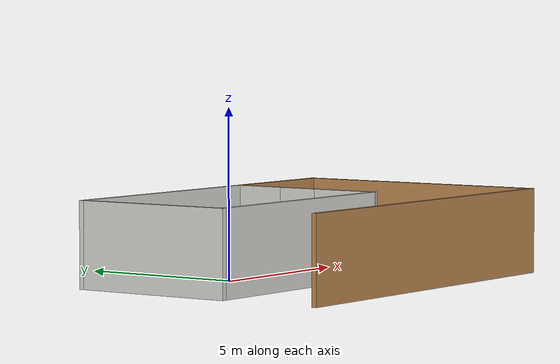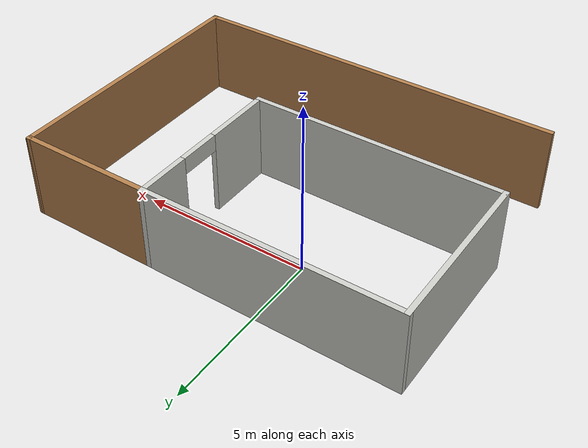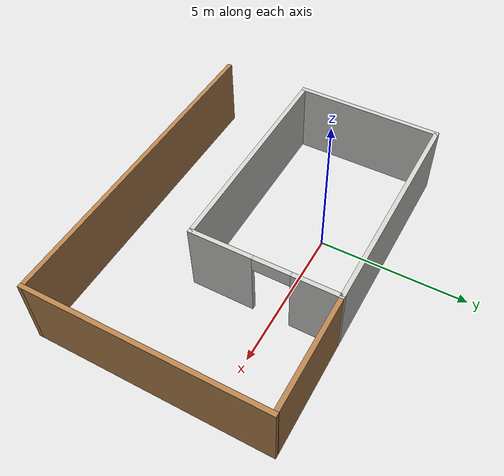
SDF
<?xml version='1.0'?>
<sdf version='1.6'>
  <model name='hospital_demo'>
    <pose frame=''>1.55053 -1.86018 0 0 -0 0</pose>
    <link name='Wall_0'>
      <collision name='Wall_0_Collision'>
        <geometry>
          <box>
            <size>5 0.15 2.5</size>
          </box>
        </geometry>
        <pose frame=''>0 0 1.25 0 -0 0</pose>
      </collision>
      <visual name='Wall_0_Visual'>
        <pose frame=''>0 0 1.25 0 -0 0</pose>
        <geometry>
          <box>
            <size>5 0.15 2.5</size>
          </box>
        </geometry>
        <material>
          <script>
            <uri>file://media/materials/scripts/gazebo.material</uri>
            <name>Gazebo/CeilingTiled</name>
          </script>
          <ambient>1 1 1 1</ambient>
        </material>
        <meta>
          <layer>0</layer>
        </meta>
      </visual>
      <pose frame=''>-5.6 1.5 0 0 -0 -1.5708</pose>
    </link>
    <link name='Wall_10'>
      <collision name='Wall_10_Collision'>
        <geometry>
          <box>
            <size>11.25 0.15 2.5</size>
          </box>
        </geometry>
        <pose frame=''>0 0 1.25 0 -0 0</pose>
      </collision>
      <visual name='Wall_10_Visual'>
        <pose frame=''>0 0 1.25 0 -0 0</pose>
        <geometry>
          <box>
            <size>11.25 0.15 2.5</size>
          </box>
        </geometry>
        <material>
          <script>
            <uri>file://media/materials/scripts/gazebo.material</uri>
            <name>Gazebo/Wood</name>
          </script>
          <ambient>1 1 1 1</ambient>
        </material>
        <meta>
          <layer>0</layer>
        </meta>
      </visual>
      <pose frame=''>0.05 -3.925 0 0 -0 3.14159</pose>
    </link>
    <link name='Wall_3'>
      <collision name='Wall_3_Collision'>
        <geometry>
          <box>
            <size>7.5 0.15 2.5</size>
          </box>
        </geometry>
        <pose frame=''>0 0 1.25 0 -0 0</pose>
      </collision>
      <visual name='Wall_3_Visual'>
        <pose frame=''>0 0 1.25 0 -0 0</pose>
        <geometry>
          <box>
            <size>7.5 0.15 2.5</size>
          </box>
        </geometry>
        <material>
          <script>
            <uri>file://media/materials/scripts/gazebo.material</uri>
            <name>Gazebo/CeilingTiled</name>
          </script>
          <ambient>1 1 1 1</ambient>
        </material>
        <meta>
          <layer>0</layer>
        </meta>
      </visual>
      <pose frame=''>-1.925 -0.925 0 0 -0 0</pose>
    </link>
    <link name='Wall_4'>
      <pose frame=''>1.75 1.5 0 0 -0 1.5708</pose>
      <visual name='Wall_4_Visual_0'>
        <pose frame=''>-1.42984 0 1.25 0 -0 0</pose>
        <geometry>
          <box>
            <size>2.14032 0.15 2.5</size>
          </box>
        </geometry>
        <material>
          <script>
            <uri>file://media/materials/scripts/gazebo.material</uri>
            <name>Gazebo/CeilingTiled</name>
          </script>
          <ambient>1 1 1 1</ambient>
        </material>
        <meta>
          <layer>0</layer>
        </meta>
      </visual>
      <collision name='Wall_4_Collision_0'>
        <geometry>
          <box>
            <size>2.14032 0.15 2.5</size>
          </box>
        </geometry>
        <pose frame=''>-1.42984 0 1.25 0 -0 0</pose>
      </collision>
      <visual name='Wall_4_Visual_1'>
        <pose frame=''>1.68679 0 1.25 0 -0 0</pose>
        <geometry>
          <box>
            <size>1.62643 0.15 2.5</size>
          </box>
        </geometry>
        <material>
          <script>
            <uri>file://media/materials/scripts/gazebo.material</uri>
            <name>Gazebo/CeilingTiled</name>
          </script>
          <ambient>1 1 1 1</ambient>
        </material>
        <meta>
          <layer>0</layer>
        </meta>
      </visual>
      <collision name='Wall_4_Collision_1'>
        <geometry>
          <box>
            <size>1.62643 0.15 2.5</size>
          </box>
        </geometry>
        <pose frame=''>1.68679 0 1.25 0 -0 0</pose>
      </collision>
      <visual name='Wall_4_Visual_2'>
        <pose frame=''>0.256947 0 2.25 0 -0 0</pose>
        <geometry>
          <box>
            <size>1.23325 0.15 0.5</size>
          </box>
        </geometry>
        <material>
          <script>
            <uri>file://media/materials/scripts/gazebo.material</uri>
            <name>Gazebo/CeilingTiled</name>
          </script>
          <ambient>1 1 1 1</ambient>
        </material>
        <meta>
          <layer>0</layer>
        </meta>
      </visual>
      <collision name='Wall_4_Collision_2'>
        <geometry>
          <box>
            <size>1.23325 0.15 0.5</size>
          </box>
        </geometry>
        <pose frame=''>0.256947 0 2.25 0 -0 0</pose>
      </collision>
    </link>
    <link name='Wall_5'>
      <collision name='Wall_5_Collision'>
        <geometry>
          <box>
            <size>7.5 0.15 2.5</size>
          </box>
        </geometry>
        <pose frame=''>0 0 1.25 0 -0 0</pose>
      </collision>
      <visual name='Wall_5_Visual'>
        <pose frame=''>0 0 1.25 0 -0 0</pose>
        <geometry>
          <box>
            <size>7.5 0.15 2.5</size>
          </box>
        </geometry>
        <material>
          <script>
            <uri>file://media/materials/scripts/gazebo.material</uri>
            <name>Gazebo/CeilingTiled</name>
          </script>
          <ambient>1 1 1 1</ambient>
        </material>
        <meta>
          <layer>0</layer>
        </meta>
      </visual>
      <pose frame=''>-1.925 3.925 0 0 -0 3.14159</pose>
    </link>
    <link name='Wall_7'>
      <collision name='Wall_7_Collision'>
        <geometry>
          <box>
            <size>4 0.15 2.5</size>
          </box>
        </geometry>
        <pose frame=''>0 0 1.25 0 -0 0</pose>
      </collision>
      <visual name='Wall_7_Visual'>
        <pose frame=''>0 0 1.25 0 -0 0</pose>
        <geometry>
          <box>
            <size>4 0.15 2.5</size>
          </box>
        </geometry>
        <material>
          <script>
            <uri>file://media/materials/scripts/gazebo.material</uri>
            <name>Gazebo/Wood</name>
          </script>
          <ambient>1 1 1 1</ambient>
        </material>
        <meta>
          <layer>0</layer>
        </meta>
      </visual>
      <pose frame=''>3.675 3.925 0 0 -0 0</pose>
    </link>
    <link name='Wall_9'>
      <collision name='Wall_9_Collision'>
        <geometry>
          <box>
            <size>8 0.15 2.5</size>
          </box>
        </geometry>
        <pose frame=''>0 0 1.25 0 -0 0</pose>
      </collision>
      <visual name='Wall_9_Visual'>
        <pose frame=''>0 0 1.25 0 -0 0</pose>
        <geometry>
          <box>
            <size>8 0.15 2.5</size>
          </box>
        </geometry>
        <material>
          <script>
            <uri>file://media/materials/scripts/gazebo.material</uri>
            <name>Gazebo/Wood</name>
          </script>
          <ambient>1 1 1 1</ambient>
        </material>
        <meta>
          <layer>0</layer>
        </meta>
      </visual>
      <pose frame=''>5.6 -0 0 0 -0 -1.5708</pose>
    </link>
    <static>1</static>
  </model>
</sdf>
